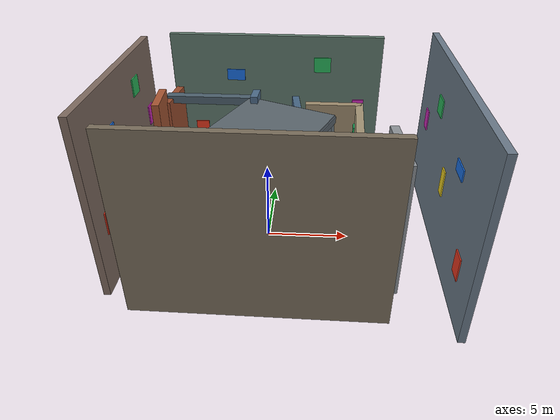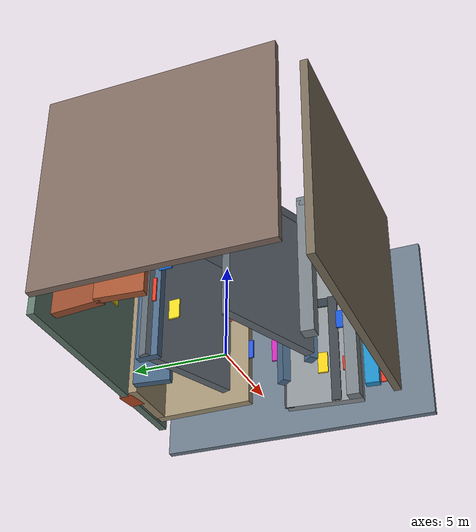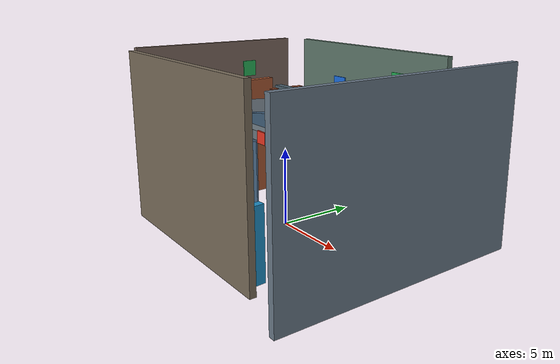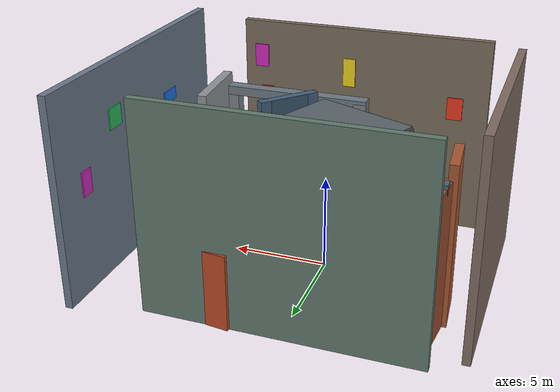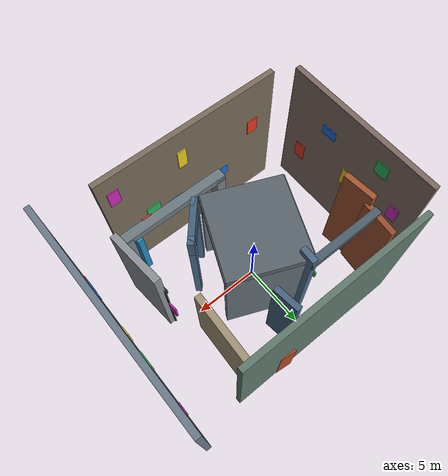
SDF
<?xml version="1.0"?>
<sdf version="1.10">
  <model name="s_curve_urban_structures">
    <static>true</static>
    <link name="urban_geometry">
      <!-- South arch: the route crosses y=-4.5 near x=3.18 and z=6.0 m. -->
      <collision name="south_arch_left_pier">
        <pose>-0.50 -4.50 3.80 0 0 0</pose>
        <geometry><box><size>0.70 0.70 7.60</size></box></geometry>
      </collision>
      <visual name="south_arch_left_pier_visual">
        <pose>-0.50 -4.50 3.80 0 0 0</pose>
        <geometry><box><size>0.70 0.70 7.60</size></box></geometry>
        <material><ambient>0.34 0.37 0.39 1</ambient><diffuse>0.48 0.51 0.53 1</diffuse><pbr><metal><albedo_map>materials/textures/canyon_v1.png</albedo_map><roughness>0.90</roughness></metal></pbr></material>
      </visual>
      <collision name="south_arch_right_pier">
        <pose>6.86 -4.50 3.80 0 0 0</pose>
        <geometry><box><size>0.70 0.70 7.60</size></box></geometry>
      </collision>
      <visual name="south_arch_right_pier_visual">
        <pose>6.86 -4.50 3.80 0 0 0</pose>
        <geometry><box><size>0.70 0.70 7.60</size></box></geometry>
        <material><ambient>0.34 0.37 0.39 1</ambient><diffuse>0.48 0.51 0.53 1</diffuse><pbr><metal><albedo_map>materials/textures/canyon_v1.png</albedo_map><roughness>0.90</roughness></metal></pbr></material>
      </visual>
      <collision name="south_arch_header">
        <pose>3.18 -4.50 7.55 0 0 0</pose>
        <geometry><box><size>8.06 0.70 0.50</size></box></geometry>
      </collision>
      <visual name="south_arch_header_visual">
        <pose>3.18 -4.50 7.55 0 0 0</pose>
        <geometry><box><size>8.06 0.70 0.50</size></box></geometry>
        <material><ambient>0.27 0.31 0.34 1</ambient><diffuse>0.43 0.48 0.51 1</diffuse><pbr><metal><albedo_map>materials/textures/facade_a_v2.png</albedo_map><roughness>0.88</roughness></metal></pbr></material>
      </visual>

      <!-- Short diagonal tunnel follows the center crossing of the S route. -->
      <collision name="short_tunnel_left_wall">
        <pose>-1.15 -2.71 3.63 0 0 2.74</pose>
        <geometry><box><size>5.80 0.50 7.25</size></box></geometry>
      </collision>
      <visual name="short_tunnel_left_wall_visual">
        <pose>-1.15 -2.71 3.63 0 0 2.74</pose>
        <geometry><box><size>5.80 0.50 7.25</size></box></geometry>
        <material><ambient>0.30 0.33 0.35 1</ambient><diffuse>0.40 0.44 0.47 1</diffuse><pbr><metal><albedo_map>materials/textures/tunnel_v1.png</albedo_map><roughness>0.94</roughness></metal></pbr></material>
      </visual>
      <collision name="short_tunnel_right_wall">
        <pose>1.15 2.71 3.63 0 0 2.74</pose>
        <geometry><box><size>5.80 0.50 7.25</size></box></geometry>
      </collision>
      <visual name="short_tunnel_right_wall_visual">
        <pose>1.15 2.71 3.63 0 0 2.74</pose>
        <geometry><box><size>5.80 0.50 7.25</size></box></geometry>
        <material><ambient>0.30 0.33 0.35 1</ambient><diffuse>0.40 0.44 0.47 1</diffuse><pbr><metal><albedo_map>materials/textures/tunnel_v1.png</albedo_map><roughness>0.94</roughness></metal></pbr></material>
      </visual>
      <collision name="short_tunnel_roof">
        <pose>0 0 7.50 0 0 2.74</pose>
        <geometry><box><size>5.80 6.40 0.50</size></box></geometry>
      </collision>
      <visual name="short_tunnel_roof_visual">
        <pose>0 0 7.50 0 0 2.74</pose>
        <geometry><box><size>5.80 6.40 0.50</size></box></geometry>
        <material><ambient>0.25 0.28 0.30 1</ambient><diffuse>0.36 0.40 0.43 1</diffuse><pbr><metal><albedo_map>materials/textures/tunnel_v1.png</albedo_map><roughness>0.95</roughness></metal></pbr></material>
      </visual>
      <collision name="short_tunnel_south_lintel">
        <pose>2.53 -1.08 7.45 0 0 2.74</pose>
        <geometry><box><size>0.45 6.40 0.40</size></box></geometry>
      </collision>
      <visual name="short_tunnel_south_lintel_visual">
        <pose>2.53 -1.08 7.45 0 0 2.74</pose>
        <geometry><box><size>0.45 6.40 0.40</size></box></geometry>
        <material><ambient>0.22 0.25 0.27 1</ambient><diffuse>0.34 0.38 0.41 1</diffuse><pbr><metal><albedo_map>materials/textures/tunnel_v1.png</albedo_map><roughness>0.94</roughness></metal></pbr></material>
      </visual>
      <collision name="short_tunnel_north_lintel">
        <pose>-2.53 1.08 7.45 0 0 2.74</pose>
        <geometry><box><size>0.45 6.40 0.40</size></box></geometry>
      </collision>
      <visual name="short_tunnel_north_lintel_visual">
        <pose>-2.53 1.08 7.45 0 0 2.74</pose>
        <geometry><box><size>0.45 6.40 0.40</size></box></geometry>
        <material><ambient>0.22 0.25 0.27 1</ambient><diffuse>0.34 0.38 0.41 1</diffuse><pbr><metal><albedo_map>materials/textures/tunnel_v1.png</albedo_map><roughness>0.94</roughness></metal></pbr></material>
      </visual>

      <!-- North canyon: asymmetric segmented walls create corners and an alley opening. -->
      <collision name="urban_canyon_west_south">
        <pose>-6.82 2.27 4.20 0 0 0.08</pose>
        <geometry><box><size>0.45 2.45 8.40</size></box></geometry>
      </collision>
      <visual name="urban_canyon_west_south_visual">
        <pose>-6.82 2.27 4.20 0 0 0.08</pose>
        <geometry><box><size>0.45 2.45 8.40</size></box></geometry>
        <material><ambient>0.48 0.25 0.16 1</ambient><diffuse>0.66 0.34 0.20 1</diffuse><pbr><metal><albedo_map>materials/textures/facade_b_v2.png</albedo_map><roughness>0.91</roughness></metal></pbr></material>
      </visual>
      <collision name="urban_canyon_west_north">
        <pose>-6.58 4.55 3.80 0 0 -0.10</pose>
        <geometry><box><size>0.45 2.70 7.60</size></box></geometry>
      </collision>
      <visual name="urban_canyon_west_north_visual">
        <pose>-6.58 4.55 3.80 0 0 -0.10</pose>
        <geometry><box><size>0.45 2.70 7.60</size></box></geometry>
        <material><ambient>0.42 0.22 0.15 1</ambient><diffuse>0.60 0.30 0.18 1</diffuse><pbr><metal><albedo_map>materials/textures/facade_b_v2.png</albedo_map><roughness>0.91</roughness></metal></pbr></material>
      </visual>
      <!-- The east-south canyon wall terminates before the protected central
           corridor. A separate route-normal gateway below provides the
           deliberate second-lobe fly-through. -->
      <collision name="urban_canyon_east_south">
        <pose>-1.07 3.70 4.10 0 0 -0.05</pose>
        <geometry><box><size>0.45 1.20 8.20</size></box></geometry>
      </collision>
      <visual name="urban_canyon_east_south_visual">
        <pose>-1.07 3.70 4.10 0 0 -0.05</pose>
        <geometry><box><size>0.45 1.20 8.20</size></box></geometry>
        <material><ambient>0.22 0.30 0.38 1</ambient><diffuse>0.30 0.42 0.54 1</diffuse><pbr><metal><albedo_map>materials/textures/canyon_v1.png</albedo_map><roughness>0.90</roughness></metal></pbr></material>
      </visual>
      <collision name="east_canyon_gateway_south_pier">
        <pose>2.07 -3.70 4.10 0 0 -0.724</pose>
        <geometry><box><size>0.45 0.60 8.20</size></box></geometry>
      </collision>
      <visual name="east_canyon_gateway_south_pier_visual">
        <pose>2.07 -3.70 4.10 0 0 -0.724</pose>
        <geometry><box><size>0.45 0.60 8.20</size></box></geometry>
        <material><ambient>0.22 0.30 0.38 1</ambient><diffuse>0.30 0.42 0.54 1</diffuse><pbr><metal><albedo_map>materials/textures/canyon_v1.png</albedo_map><roughness>0.90</roughness></metal></pbr></material>
      </visual>
      <collision name="east_canyon_gateway_north_pier">
        <pose>3.92 -1.60 4.10 0 0 -0.724</pose>
        <geometry><box><size>0.45 0.60 8.20</size></box></geometry>
      </collision>
      <visual name="east_canyon_gateway_north_pier_visual">
        <pose>3.92 -1.60 4.10 0 0 -0.724</pose>
        <geometry><box><size>0.45 0.60 8.20</size></box></geometry>
        <material><ambient>0.22 0.30 0.38 1</ambient><diffuse>0.30 0.42 0.54 1</diffuse><pbr><metal><albedo_map>materials/textures/canyon_v1.png</albedo_map><roughness>0.90</roughness></metal></pbr></material>
      </visual>
      <collision name="east_canyon_gateway_header">
        <pose>3.00 -2.65 7.40 0 0 -0.724</pose>
        <geometry><box><size>0.45 3.40 1.60</size></box></geometry>
      </collision>
      <visual name="east_canyon_gateway_header_visual">
        <pose>3.00 -2.65 7.40 0 0 -0.724</pose>
        <geometry><box><size>0.45 3.40 1.60</size></box></geometry>
        <material><ambient>0.18 0.25 0.31 1</ambient><diffuse>0.26 0.38 0.49 1</diffuse><pbr><metal><albedo_map>materials/textures/tunnel_v1.png</albedo_map><roughness>0.94</roughness></metal></pbr></material>
      </visual>
      <collision name="urban_canyon_east_north">
        <pose>1.50 4.75 3.60 0 0 0.12</pose>
        <geometry><box><size>0.45 2.00 7.20</size></box></geometry>
      </collision>
      <visual name="urban_canyon_east_north_visual">
        <pose>1.50 4.75 3.60 0 0 0.12</pose>
        <geometry><box><size>0.45 2.00 7.20</size></box></geometry>
        <material><ambient>0.20 0.28 0.36 1</ambient><diffuse>0.28 0.40 0.52 1</diffuse><pbr><metal><albedo_map>materials/textures/canyon_v1.png</albedo_map><roughness>0.90</roughness></metal></pbr></material>
      </visual>

      <!-- Additional facades provide long planes and non-repetitive urban corners. -->
      <collision name="south_east_facade">
        <pose>7.25 -2.75 4.20 0 0 0.08</pose>
        <geometry><box><size>0.50 4.20 8.40</size></box></geometry>
      </collision>
      <visual name="south_east_facade_visual">
        <pose>7.25 -2.75 4.20 0 0 0.08</pose>
        <geometry><box><size>0.50 4.20 8.40</size></box></geometry>
        <material><ambient>0.40 0.42 0.44 1</ambient><diffuse>0.56 0.58 0.60 1</diffuse><pbr><metal><albedo_map>materials/textures/facade_a_v2.png</albedo_map><roughness>0.89</roughness></metal></pbr></material>
      </visual>
      <collision name="north_east_facade">
        <pose>5.61 3.65 3.25 0 0 -0.04</pose>
        <geometry><box><size>0.50 5.50 6.50</size></box></geometry>
      </collision>
      <visual name="north_east_facade_visual">
        <pose>5.61 3.65 3.25 0 0 -0.04</pose>
        <geometry><box><size>0.50 5.50 6.50</size></box></geometry>
        <material><ambient>0.48 0.44 0.36 1</ambient><diffuse>0.64 0.58 0.46 1</diffuse><pbr><metal><albedo_map>materials/textures/facade_b_v2.png</albedo_map><roughness>0.91</roughness></metal></pbr></material>
      </visual>
      <collision name="north_east_corner">
        <pose>3.95 6.20 3.25 0 0 0</pose>
        <geometry><box><size>3.80 0.50 6.50</size></box></geometry>
      </collision>
      <visual name="north_east_corner_visual">
        <pose>3.95 6.20 3.25 0 0 0</pose>
        <geometry><box><size>3.80 0.50 6.50</size></box></geometry>
        <material><ambient>0.45 0.41 0.34 1</ambient><diffuse>0.62 0.55 0.43 1</diffuse><pbr><metal><albedo_map>materials/textures/facade_b_v2.png</albedo_map><roughness>0.91</roughness></metal></pbr></material>
      </visual>

      <!-- A second fly-through gateway closes the north canyon overhead while
           retaining more than 2.5 m vertical clearance along the 3D S path. -->
      <collision name="north_arcade_header">
        <pose>-3.84 4.10 7.55 0 0 0</pose>
        <geometry><box><size>6.00 0.55 0.50</size></box></geometry>
      </collision>
      <visual name="north_arcade_header_visual">
        <pose>-3.84 4.10 7.55 0 0 0</pose>
        <geometry><box><size>6.00 0.55 0.50</size></box></geometry>
        <material><ambient>0.18 0.22 0.25 1</ambient><diffuse>0.30 0.38 0.43 1</diffuse><pbr><metal><albedo_map>materials/textures/tunnel_v1.png</albedo_map><roughness>0.94</roughness></metal></pbr></material>
      </visual>

      <!-- Sparse street furniture stays outside the protected route but gives
           both LiDAR and the forward RGB-D camera nearby non-planar edges. -->
      <collision name="south_visual_totem">
        <pose>5.80 -5.80 2.20 0 0 0.08</pose>
        <geometry><box><size>0.45 0.75 4.40</size></box></geometry>
      </collision>
      <visual name="visual_feature_south_totem">
        <pose>5.80 -5.80 2.20 0 0 0.08</pose>
        <geometry><box><size>0.45 0.75 4.40</size></box></geometry>
        <material><ambient>0.10 0.36 0.54 1</ambient><diffuse>0.12 0.56 0.78 1</diffuse></material>
      </visual>
      <collision name="north_service_block">
        <pose>3.00 6.70 2.00 0 0 -0.12</pose>
        <geometry><box><size>1.20 0.80 4.00</size></box></geometry>
      </collision>
      <visual name="visual_feature_north_service_block">
        <pose>3.00 6.70 2.00 0 0 -0.12</pose>
        <geometry><box><size>1.20 0.80 4.00</size></box></geometry>
        <material><ambient>0.44 0.16 0.10 1</ambient><diffuse>0.72 0.28 0.14 1</diffuse></material>
      </visual>

      <!-- A distant east facade keeps the fixed-forward D435i view inside a
           structured urban scene at the outer edge of the large figure-eight. -->
      <collision name="east_background_facade">
        <pose>10.50 0 5.50 0 0 0</pose>
        <geometry><box><size>0.40 16.00 11.00</size></box></geometry>
      </collision>
      <visual name="east_background_facade_visual">
        <pose>10.50 0 5.50 0 0 0</pose>
        <geometry><box><size>0.40 16.00 11.00</size></box></geometry>
        <material><ambient>0.30 0.34 0.38 1</ambient><diffuse>0.42 0.48 0.54 1</diffuse><pbr><metal><albedo_map>materials/textures/facade_a_v2.png</albedo_map><roughness>0.88</roughness></metal></pbr></material>
      </visual>
      <collision name="east_wall_relief_01"><pose>10.28 -5.60 3.00 0 0 0</pose><geometry><box><size>0.10 0.90 1.40</size></box></geometry></collision>
      <visual name="visual_feature_east_wall_01"><pose>10.28 -5.60 3.00 0 0 0</pose><geometry><box><size>0.10 0.90 1.40</size></box></geometry><material><ambient>0.72 0.14 0.08 1</ambient><diffuse>0.92 0.22 0.12 1</diffuse></material></visual>
      <visual name="visual_feature_east_wall_02"><pose>10.28 -3.10 7.20 0 0 0</pose><geometry><box><size>0.10 1.30 0.70</size></box></geometry><material><ambient>0.08 0.30 0.68 1</ambient><diffuse>0.10 0.44 0.90 1</diffuse></material></visual>
      <collision name="east_wall_relief_03"><pose>10.28 -0.40 4.70 0 0 0</pose><geometry><box><size>0.10 0.65 1.65</size></box></geometry></collision>
      <visual name="visual_feature_east_wall_03"><pose>10.28 -0.40 4.70 0 0 0</pose><geometry><box><size>0.10 0.65 1.65</size></box></geometry><material><ambient>0.78 0.66 0.08 1</ambient><diffuse>0.94 0.82 0.12 1</diffuse></material></visual>
      <visual name="visual_feature_east_wall_04"><pose>10.28 2.70 8.10 0 0 0</pose><geometry><box><size>0.10 1.10 1.10</size></box></geometry><material><ambient>0.12 0.52 0.26 1</ambient><diffuse>0.16 0.72 0.36 1</diffuse></material></visual>
      <collision name="east_wall_relief_05"><pose>10.28 5.70 5.80 0 0 0</pose><geometry><box><size>0.10 0.75 1.30</size></box></geometry></collision>
      <visual name="visual_feature_east_wall_05"><pose>10.28 5.70 5.80 0 0 0</pose><geometry><box><size>0.10 0.75 1.30</size></box></geometry><material><ambient>0.62 0.10 0.56 1</ambient><diffuse>0.82 0.16 0.74 1</diffuse></material></visual>

      <collision name="west_background_facade">
        <pose>-8.50 0 5.50 0 0 0</pose>
        <geometry><box><size>0.40 12.00 11.00</size></box></geometry>
      </collision>
      <visual name="west_background_facade_visual">
        <pose>-8.50 0 5.50 0 0 0</pose>
        <geometry><box><size>0.40 12.00 11.00</size></box></geometry>
        <material><ambient>0.36 0.30 0.28 1</ambient><diffuse>0.50 0.42 0.38 1</diffuse><pbr><metal><albedo_map>materials/textures/facade_b_v2.png</albedo_map><roughness>0.92</roughness></metal></pbr></material>
      </visual>
      <collision name="west_wall_relief_01"><pose>-8.28 -4.30 4.00 0 0 0</pose><geometry><box><size>0.10 0.90 1.40</size></box></geometry></collision>
      <visual name="visual_feature_west_wall_01"><pose>-8.28 -4.30 4.00 0 0 0</pose><geometry><box><size>0.10 0.90 1.40</size></box></geometry><material><ambient>0.72 0.14 0.08 1</ambient><diffuse>0.92 0.22 0.12 1</diffuse></material></visual>
      <visual name="visual_feature_west_wall_02"><pose>-8.28 -2.10 8.20 0 0 0</pose><geometry><box><size>0.10 1.20 0.70</size></box></geometry><material><ambient>0.08 0.30 0.68 1</ambient><diffuse>0.10 0.44 0.90 1</diffuse></material></visual>
      <collision name="west_wall_relief_03"><pose>-8.28 0.20 5.40 0 0 0</pose><geometry><box><size>0.10 0.70 1.60</size></box></geometry></collision>
      <visual name="visual_feature_west_wall_03"><pose>-8.28 0.20 5.40 0 0 0</pose><geometry><box><size>0.10 0.70 1.60</size></box></geometry><material><ambient>0.78 0.66 0.08 1</ambient><diffuse>0.94 0.82 0.12 1</diffuse></material></visual>
      <visual name="visual_feature_west_wall_04"><pose>-8.28 2.50 9.00 0 0 0</pose><geometry><box><size>0.10 1.00 1.10</size></box></geometry><material><ambient>0.12 0.52 0.26 1</ambient><diffuse>0.16 0.72 0.36 1</diffuse></material></visual>
      <collision name="west_wall_relief_05"><pose>-8.28 4.50 6.20 0 0 0</pose><geometry><box><size>0.10 0.80 1.30</size></box></geometry></collision>
      <visual name="visual_feature_west_wall_05"><pose>-8.28 4.50 6.20 0 0 0</pose><geometry><box><size>0.10 0.80 1.30</size></box></geometry><material><ambient>0.62 0.10 0.56 1</ambient><diffuse>0.82 0.16 0.74 1</diffuse></material></visual>

      <collision name="north_background_facade">
        <pose>0 6.80 5.50 0 0 0</pose>
        <geometry><box><size>14.00 0.40 11.00</size></box></geometry>
      </collision>
      <visual name="north_background_facade_visual">
        <pose>0 6.80 5.50 0 0 0</pose>
        <geometry><box><size>14.00 0.40 11.00</size></box></geometry>
        <material><ambient>0.28 0.34 0.31 1</ambient><diffuse>0.38 0.48 0.43 1</diffuse><pbr><metal><albedo_map>materials/textures/facade_a_v2.png</albedo_map><roughness>0.90</roughness></metal></pbr></material>
      </visual>
      <collision name="north_wall_relief_01"><pose>-5.30 6.58 4.10 0 0 0</pose><geometry><box><size>0.90 0.10 1.30</size></box></geometry></collision>
      <visual name="visual_feature_north_wall_01"><pose>-5.30 6.58 4.10 0 0 0</pose><geometry><box><size>0.90 0.10 1.30</size></box></geometry><material><ambient>0.72 0.14 0.08 1</ambient><diffuse>0.92 0.22 0.12 1</diffuse></material></visual>
      <visual name="visual_feature_north_wall_02"><pose>-2.70 6.58 8.30 0 0 0</pose><geometry><box><size>1.20 0.10 0.75</size></box></geometry><material><ambient>0.08 0.30 0.68 1</ambient><diffuse>0.10 0.44 0.90 1</diffuse></material></visual>
      <collision name="north_wall_relief_03"><pose>0.10 6.58 5.20 0 0 0</pose><geometry><box><size>0.70 0.10 1.55</size></box></geometry></collision>
      <visual name="visual_feature_north_wall_03"><pose>0.10 6.58 5.20 0 0 0</pose><geometry><box><size>0.70 0.10 1.55</size></box></geometry><material><ambient>0.78 0.66 0.08 1</ambient><diffuse>0.94 0.82 0.12 1</diffuse></material></visual>
      <visual name="visual_feature_north_wall_04"><pose>3.10 6.58 9.10 0 0 0</pose><geometry><box><size>1.10 0.10 1.00</size></box></geometry><material><ambient>0.12 0.52 0.26 1</ambient><diffuse>0.16 0.72 0.36 1</diffuse></material></visual>
      <collision name="north_wall_relief_05"><pose>5.60 6.58 6.00 0 0 0</pose><geometry><box><size>0.75 0.10 1.35</size></box></geometry></collision>
      <visual name="visual_feature_north_wall_05"><pose>5.60 6.58 6.00 0 0 0</pose><geometry><box><size>0.75 0.10 1.35</size></box></geometry><material><ambient>0.62 0.10 0.56 1</ambient><diffuse>0.82 0.16 0.74 1</diffuse></material></visual>

      <collision name="south_background_facade">
        <pose>0 -6.80 5.50 0 0 0</pose>
        <geometry><box><size>14.00 0.40 11.00</size></box></geometry>
      </collision>
      <visual name="south_background_facade_visual">
        <pose>0 -6.80 5.50 0 0 0</pose>
        <geometry><box><size>14.00 0.40 11.00</size></box></geometry>
        <material><ambient>0.34 0.31 0.26 1</ambient><diffuse>0.48 0.43 0.36 1</diffuse><pbr><metal><albedo_map>materials/textures/facade_b_v2.png</albedo_map><roughness>0.92</roughness></metal></pbr></material>
      </visual>
      <collision name="south_wall_relief_01"><pose>-5.20 -6.58 7.10 0 0 0</pose><geometry><box><size>0.85 0.10 1.25</size></box></geometry></collision>
      <visual name="visual_feature_south_wall_01"><pose>-5.20 -6.58 7.10 0 0 0</pose><geometry><box><size>0.85 0.10 1.25</size></box></geometry><material><ambient>0.72 0.14 0.08 1</ambient><diffuse>0.92 0.22 0.12 1</diffuse></material></visual>
      <visual name="visual_feature_south_wall_02"><pose>-2.30 -6.58 4.00 0 0 0</pose><geometry><box><size>1.20 0.10 0.80</size></box></geometry><material><ambient>0.08 0.30 0.68 1</ambient><diffuse>0.10 0.44 0.90 1</diffuse></material></visual>
      <collision name="south_wall_relief_03"><pose>0.80 -6.58 8.50 0 0 0</pose><geometry><box><size>0.70 0.10 1.60</size></box></geometry></collision>
      <visual name="visual_feature_south_wall_03"><pose>0.80 -6.58 8.50 0 0 0</pose><geometry><box><size>0.70 0.10 1.60</size></box></geometry><material><ambient>0.78 0.66 0.08 1</ambient><diffuse>0.94 0.82 0.12 1</diffuse></material></visual>
      <visual name="visual_feature_south_wall_04"><pose>3.70 -6.58 5.00 0 0 0</pose><geometry><box><size>1.10 0.10 1.00</size></box></geometry><material><ambient>0.12 0.52 0.26 1</ambient><diffuse>0.16 0.72 0.36 1</diffuse></material></visual>
      <collision name="south_wall_relief_05"><pose>6.00 -6.58 9.00 0 0 0</pose><geometry><box><size>0.80 0.10 1.30</size></box></geometry></collision>
      <visual name="visual_feature_south_wall_05"><pose>6.00 -6.58 9.00 0 0 0</pose><geometry><box><size>0.80 0.10 1.30</size></box></geometry><material><ambient>0.62 0.10 0.56 1</ambient><diffuse>0.82 0.16 0.74 1</diffuse></material></visual>

      <visual name="visual_feature_south_arch_01"><pose>0.60 -4.86 7.52 0 0 0</pose><geometry><box><size>0.80 0.10 0.35</size></box></geometry><material><ambient>0.78 0.66 0.08 1</ambient><diffuse>0.94 0.82 0.12 1</diffuse></material></visual>
      <visual name="visual_feature_south_arch_02"><pose>2.70 -4.86 7.52 0 0 0</pose><geometry><box><size>1.10 0.10 0.50</size></box></geometry><material><ambient>0.08 0.34 0.70 1</ambient><diffuse>0.10 0.48 0.92 1</diffuse></material></visual>
      <visual name="visual_feature_south_arch_03"><pose>5.00 -4.86 7.52 0 0 0</pose><geometry><box><size>0.70 0.10 0.65</size></box></geometry><material><ambient>0.72 0.14 0.10 1</ambient><diffuse>0.92 0.22 0.14 1</diffuse></material></visual>

      <visual name="visual_feature_east_arcade_left">
        <pose>6.91 -3.48 3.20 0 0 0.08</pose>
        <geometry><box><size>0.10 0.52 6.40</size></box></geometry>
        <material><ambient>0.15 0.17 0.18 1</ambient><diffuse>0.24 0.27 0.29 1</diffuse></material>
      </visual>
      <visual name="visual_feature_east_arcade_right">
        <pose>6.91 -0.82 3.20 0 0 0.08</pose>
        <geometry><box><size>0.10 0.52 6.40</size></box></geometry>
        <material><ambient>0.15 0.17 0.18 1</ambient><diffuse>0.24 0.27 0.29 1</diffuse></material>
      </visual>
      <visual name="visual_feature_east_arcade_header">
        <pose>6.91 -2.15 6.15 0 0 0.08</pose>
        <geometry><box><size>0.10 3.18 0.52</size></box></geometry>
        <material><ambient>0.12 0.14 0.16 1</ambient><diffuse>0.20 0.24 0.27 1</diffuse></material>
      </visual>

      <visual name="visual_feature_south_panel_01"><pose>6.90 -4.25 2.10 0 0 0.08</pose><geometry><box><size>0.12 0.62 0.82</size></box></geometry><material><ambient>0.72 0.12 0.08 1</ambient><diffuse>0.92 0.20 0.12 1</diffuse></material></visual>
      <visual name="visual_feature_south_panel_02"><pose>6.90 -4.05 4.85 0 0 0.08</pose><geometry><box><size>0.12 0.78 1.05</size></box></geometry><material><ambient>0.08 0.22 0.62 1</ambient><diffuse>0.10 0.34 0.86 1</diffuse></material></visual>
      <visual name="visual_feature_south_panel_03"><pose>6.90 -2.80 2.35 0 0 0.08</pose><geometry><box><size>0.12 0.55 1.20</size></box></geometry><material><ambient>0.82 0.68 0.06 1</ambient><diffuse>0.96 0.82 0.10 1</diffuse></material></visual>
      <visual name="visual_feature_south_panel_04"><pose>6.90 -1.95 4.55 0 0 0.08</pose><geometry><box><size>0.12 0.92 0.62</size></box></geometry><material><ambient>0.08 0.52 0.24 1</ambient><diffuse>0.10 0.74 0.32 1</diffuse></material></visual>
      <visual name="visual_feature_south_panel_05"><pose>6.90 -0.20 3.65 0 0 0.08</pose><geometry><box><size>0.12 0.68 1.32</size></box></geometry><material><ambient>0.62 0.10 0.56 1</ambient><diffuse>0.82 0.16 0.74 1</diffuse></material></visual>

      <visual name="visual_feature_canyon_panel_01"><pose>-1.34 2.25 2.35 0 0 -0.05</pose><geometry><box><size>0.10 0.58 1.05</size></box></geometry><material><ambient>0.78 0.72 0.10 1</ambient><diffuse>0.94 0.86 0.14 1</diffuse></material></visual>
      <visual name="visual_feature_canyon_panel_02"><pose>-1.34 2.85 5.25 0 0 -0.05</pose><geometry><box><size>0.10 0.72 0.78</size></box></geometry><material><ambient>0.08 0.34 0.70 1</ambient><diffuse>0.10 0.46 0.92 1</diffuse></material></visual>
      <visual name="visual_feature_canyon_panel_03"><pose>-1.34 3.55 3.75 0 0 -0.05</pose><geometry><box><size>0.10 0.48 1.34</size></box></geometry><material><ambient>0.72 0.16 0.10 1</ambient><diffuse>0.90 0.24 0.14 1</diffuse></material></visual>
      <visual name="visual_feature_canyon_panel_04"><pose>-1.34 4.05 5.90 0 0 -0.05</pose><geometry><box><size>0.10 0.82 0.58</size></box></geometry><material><ambient>0.12 0.56 0.28 1</ambient><diffuse>0.16 0.76 0.38 1</diffuse></material></visual>

      <visual name="visual_feature_north_panel_01"><pose>5.33 1.00 3.10 0 0 -0.04</pose><geometry><box><size>0.10 0.72 1.05</size></box></geometry><material><ambient>0.12 0.22 0.64 1</ambient><diffuse>0.16 0.34 0.88 1</diffuse></material></visual>
      <visual name="visual_feature_north_panel_02"><pose>5.33 2.20 5.50 0 0 -0.04</pose><geometry><box><size>0.10 0.58 0.82</size></box></geometry><material><ambient>0.72 0.14 0.10 1</ambient><diffuse>0.92 0.22 0.14 1</diffuse></material></visual>
      <visual name="visual_feature_north_panel_03"><pose>5.33 3.55 2.55 0 0 -0.04</pose><geometry><box><size>0.10 0.88 1.24</size></box></geometry><material><ambient>0.74 0.64 0.08 1</ambient><diffuse>0.94 0.80 0.12 1</diffuse></material></visual>
      <visual name="visual_feature_north_panel_04"><pose>5.33 4.75 5.05 0 0 -0.04</pose><geometry><box><size>0.10 0.64 1.10</size></box></geometry><material><ambient>0.10 0.52 0.30 1</ambient><diffuse>0.14 0.72 0.40 1</diffuse></material></visual>
      <visual name="visual_feature_north_panel_05"><pose>5.33 5.65 3.60 0 0 -0.04</pose><geometry><box><size>0.10 0.50 0.72</size></box></geometry><material><ambient>0.60 0.10 0.54 1</ambient><diffuse>0.82 0.16 0.72 1</diffuse></material></visual>
    </link>
  </model>
</sdf>
